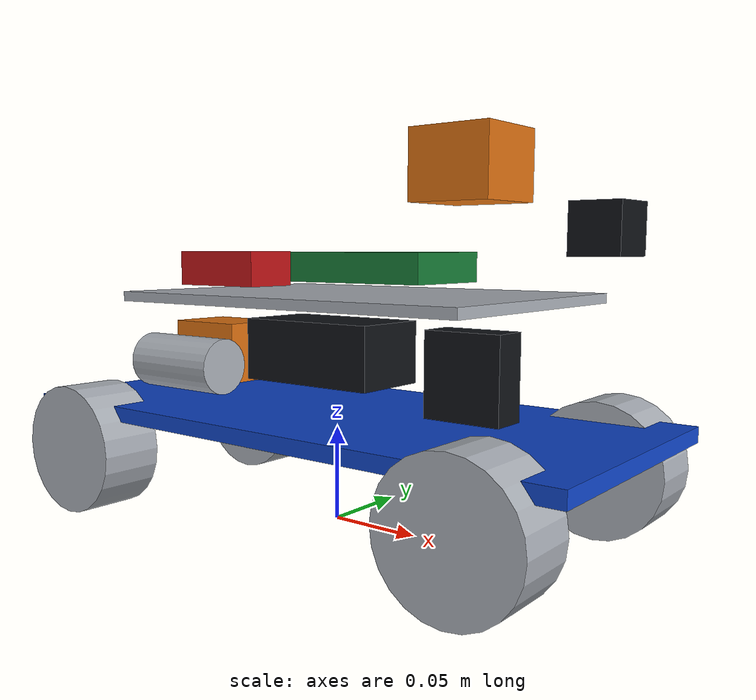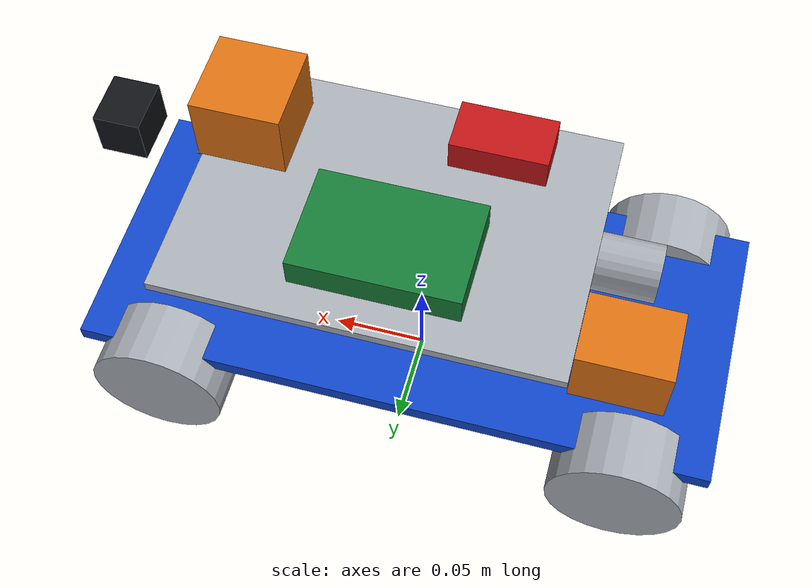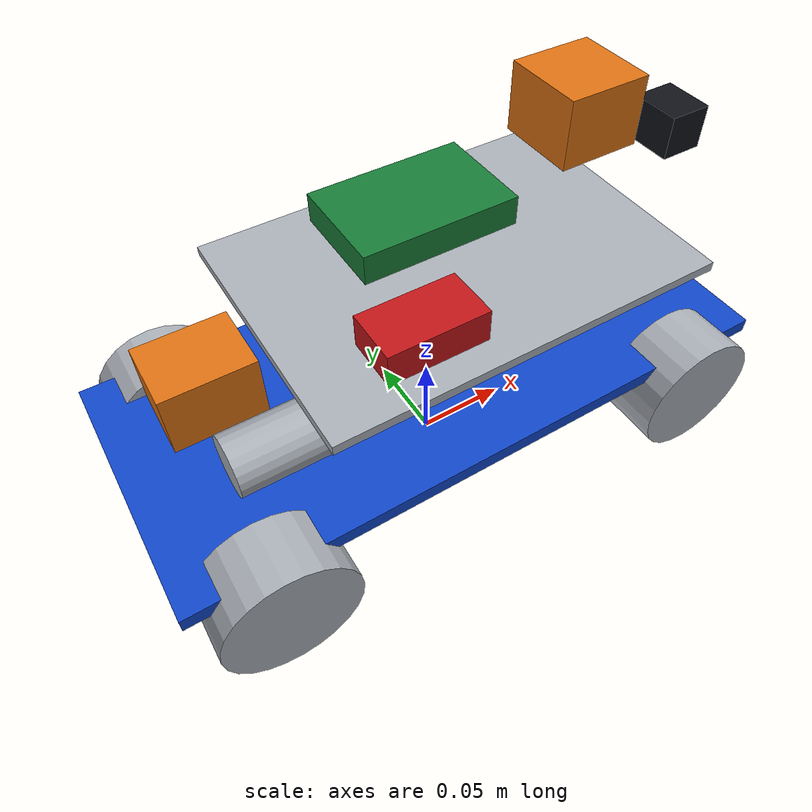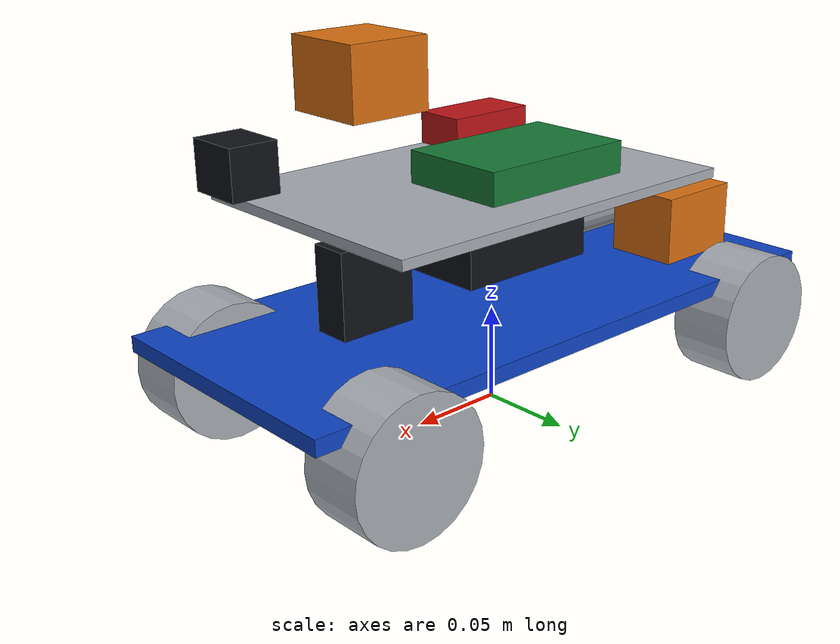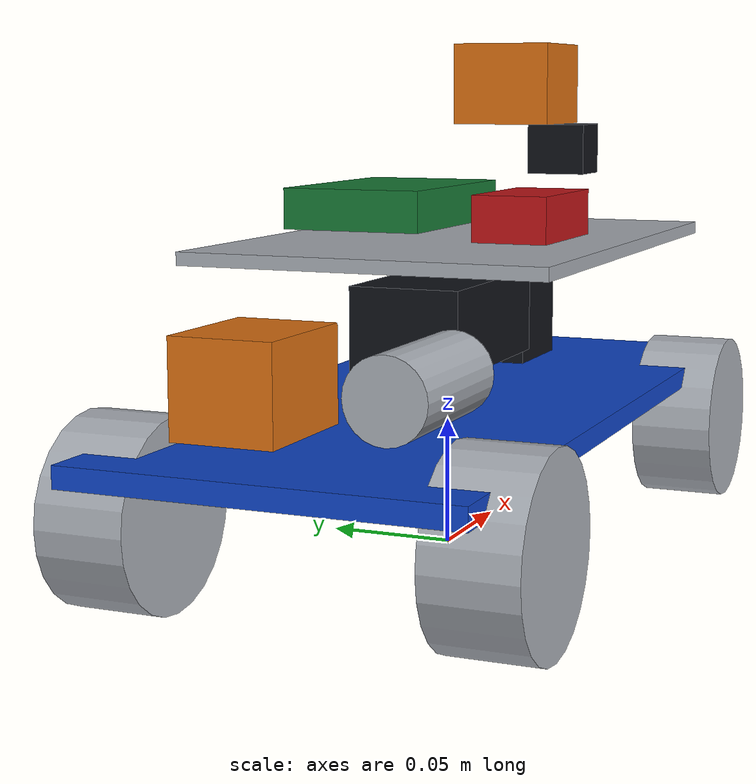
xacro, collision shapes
<?xml version='1.0' encoding='UTF-8'?>
<robot xmlns:xacro="http://www.ros.org/wiki/xacro" name="rcauto">
  <xacro:property name="length" value="0.350"/>
  <xacro:property name="width" value="0.200"/>
  <xacro:property name="wheelbase" value="0.244"/>
  <xacro:property name="kingpin_track" value="0.088"/><xacro:property name="track" value="0.138"/>
  <xacro:property name="wheel_radius" value="0.035"/>
  <xacro:macro name="mounted_mesh" params="name px py pz x y z mass mat filename z_offset"><link name="${name}"><xacro:box_inertia mass="${mass}" x="${x}" y="${y}" z="${z}"/><visual><origin xyz="0 0 ${z_offset}"/><geometry><mesh filename="${filename}" scale="0.001 0.001 0.001"/></geometry><material name="${mat}"/></visual><collision><geometry><box size="${x} ${y} ${z}"/></geometry></collision></link><joint name="${name}_mount" type="fixed"><parent link="base_link"/><child link="${name}"/><origin xyz="${px} ${py} ${pz}"/></joint></xacro:macro><xacro:property name="wheel_width" value="0.034"/>
  <xacro:property name="base_height" value="0.056"/>
  <xacro:property name="steering_limit" value="0.43"/>

  <material name="blue"><color rgba="0.06 0.27 0.78 1"/></material>
  <material name="black"><color rgba="0.06 0.07 0.09 1"/></material>
  <material name="rubber"><color rgba="0.04 0.04 0.05 1"/></material>
  <material name="green"><color rgba="0.09 0.48 0.21 1"/></material>
  <material name="metal"><color rgba="0.66 0.68 0.71 1"/></material>
  <material name="amber"><color rgba="0.86 0.44 0.07 1"/></material>
  <material name="red"><color rgba="0.75 0.08 0.09 1"/></material>

  <xacro:macro name="box_inertia" params="mass x y z">
    <inertial>
      <mass value="${mass}"/>
      <inertia ixx="${mass*(y*y+z*z)/12.0}" ixy="0" ixz="0" iyy="${mass*(x*x+z*z)/12.0}" iyz="0" izz="${mass*(x*x+y*y)/12.0}"/>
    </inertial>
  </xacro:macro>

  <xacro:macro name="box_visual" params="name x y z px py pz mat">
    <visual name="${name}">
      <origin xyz="${px} ${py} ${pz}"/>
      <geometry><box size="${x} ${y} ${z}"/></geometry>
      <material name="${mat}"/>
    </visual>
  </xacro:macro>

  <xacro:macro name="mounted_box" params="name px py pz x y z mass mat">
    <link name="${name}">
      <xacro:box_inertia mass="${mass}" x="${x}" y="${y}" z="${z}"/>
      <visual><geometry><box size="${x} ${y} ${z}"/></geometry><material name="${mat}"/></visual>
      <collision><geometry><box size="${x} ${y} ${z}"/></geometry></collision>
    </link>
    <joint name="${name}_mount" type="fixed">
      <parent link="base_link"/><child link="${name}"/>
      <origin xyz="${px} ${py} ${pz}"/>
    </joint>
  </xacro:macro>

  <xacro:macro name="wheel" params="name parent x y z">
    <link name="${name}_wheel">
      <inertial>
        <mass value="0.105"/>
        <inertia ixx="0.000046" ixy="0" ixz="0" iyy="0.0000643" iyz="0" izz="0.000046"/>
      </inertial>
      <collision>
        <origin rpy="${pi/2} 0 0"/>
        <geometry><cylinder radius="${wheel_radius}" length="${wheel_width}"/></geometry>
      </collision>
    <visual><origin xyz="0 0.015 0" rpy="${pi/2} 0 0"/><geometry><mesh filename="package://rcauto_cpp/sim/rcauto_350x200/meshes/20_wheel_rim_625ZZ.stl" scale="0.001 0.001 0.001"/></geometry><material name="metal"/></visual><visual><origin xyz="0 0.017 0" rpy="${pi/2} 0 0"/><geometry><mesh filename="package://rcauto_cpp/sim/rcauto_350x200/meshes/21_tire_70x34_TPU.stl" scale="0.001 0.001 0.001"/></geometry><material name="rubber"/></visual></link>
    <joint name="${name}_wheel_joint" type="continuous">
      <parent link="${parent}"/><child link="${name}_wheel"/>
      <origin xyz="${x} ${y} ${z}"/>
      <axis xyz="0 1 0"/>
      <limit effort="2.0" velocity="85"/>
      <dynamics damping="0.01" friction="0.015"/>
    </joint>
  </xacro:macro>

  <link name="base_footprint"/>
  <joint name="base_footprint_joint" type="fixed">
    <parent link="base_footprint"/><child link="base_link"/>
    <origin xyz="0 0 ${base_height}"/>
  </joint>
  <link name="base_link">
    <xacro:box_inertia mass="0.70" x="0.330" y="0.145" z="0.008"/>
    <!-- Four deck standoffs, sensor mast, camera bracket and rear drive housing. -->
    <collision><geometry><box size="0.330 0.145 0.008"/></geometry></collision>
  <visual name="print_01_chassis_front"><origin xyz="0.115 0 -0.004"/><geometry><mesh filename="package://rcauto_cpp/sim/rcauto_350x200/meshes/01_chassis_front.stl" scale="0.001 0.001 0.001"/></geometry><material name="blue"/></visual><visual name="print_02_chassis_center"><origin xyz="0 0 -0.004"/><geometry><mesh filename="package://rcauto_cpp/sim/rcauto_350x200/meshes/02_chassis_center.stl" scale="0.001 0.001 0.001"/></geometry><material name="blue"/></visual><visual name="print_03_chassis_rear"><origin xyz="-0.115 0 -0.004"/><geometry><mesh filename="package://rcauto_cpp/sim/rcauto_350x200/meshes/03_chassis_rear.stl" scale="0.001 0.001 0.001"/></geometry><material name="blue"/></visual><visual name="print_04_splice_front_left"><origin xyz="0.055 0.03 -0.008"/><geometry><mesh filename="package://rcauto_cpp/sim/rcauto_350x200/meshes/04_splice_front_left.stl" scale="0.001 0.001 0.001"/></geometry><material name="metal"/></visual><visual name="print_04_splice_front_right"><origin xyz="0.055 -0.03 -0.008"/><geometry><mesh filename="package://rcauto_cpp/sim/rcauto_350x200/meshes/04_splice_front_right.stl" scale="0.001 0.001 0.001"/></geometry><material name="metal"/></visual><visual name="print_04_splice_rear_left"><origin xyz="-0.055 0.03 -0.008"/><geometry><mesh filename="package://rcauto_cpp/sim/rcauto_350x200/meshes/04_splice_rear_left.stl" scale="0.001 0.001 0.001"/></geometry><material name="metal"/></visual><visual name="print_04_splice_rear_right"><origin xyz="-0.055 -0.03 -0.008"/><geometry><mesh filename="package://rcauto_cpp/sim/rcauto_350x200/meshes/04_splice_rear_right.stl" scale="0.001 0.001 0.001"/></geometry><material name="metal"/></visual><visual name="print_06_standoff_front_left"><origin xyz="0.065 0.038 0.004"/><geometry><mesh filename="package://rcauto_cpp/sim/rcauto_350x200/meshes/06_standoff_front_left.stl" scale="0.001 0.001 0.001"/></geometry><material name="metal"/></visual><visual name="print_06_standoff_front_right"><origin xyz="0.065 -0.038 0.004"/><geometry><mesh filename="package://rcauto_cpp/sim/rcauto_350x200/meshes/06_standoff_front_right.stl" scale="0.001 0.001 0.001"/></geometry><material name="metal"/></visual><visual name="print_06_standoff_rear_left"><origin xyz="-0.065 0.059 0.004"/><geometry><mesh filename="package://rcauto_cpp/sim/rcauto_350x200/meshes/06_standoff_rear_left.stl" scale="0.001 0.001 0.001"/></geometry><material name="metal"/></visual><visual name="print_06_standoff_rear_right"><origin xyz="-0.065 -0.059 0.004"/><geometry><mesh filename="package://rcauto_cpp/sim/rcauto_350x200/meshes/06_standoff_rear_right.stl" scale="0.001 0.001 0.001"/></geometry><material name="metal"/></visual><visual name="print_07_pi5_spacer_1"><origin xyz="-0.03 0.0025 0.0665"/><geometry><mesh filename="package://rcauto_cpp/sim/rcauto_350x200/meshes/07_pi5_spacer_1.stl" scale="0.001 0.001 0.001"/></geometry><material name="metal"/></visual><visual name="print_07_pi5_spacer_2"><origin xyz="-0.03 0.0515 0.0665"/><geometry><mesh filename="package://rcauto_cpp/sim/rcauto_350x200/meshes/07_pi5_spacer_2.stl" scale="0.001 0.001 0.001"/></geometry><material name="metal"/></visual><visual name="print_07_pi5_spacer_3"><origin xyz="0.028 0.0025 0.0665"/><geometry><mesh filename="package://rcauto_cpp/sim/rcauto_350x200/meshes/07_pi5_spacer_3.stl" scale="0.001 0.001 0.001"/></geometry><material name="metal"/></visual><visual name="print_07_pi5_spacer_4"><origin xyz="0.028 0.0515 0.0665"/><geometry><mesh filename="package://rcauto_cpp/sim/rcauto_350x200/meshes/07_pi5_spacer_4.stl" scale="0.001 0.001 0.001"/></geometry><material name="metal"/></visual><visual name="print_08_servo_MG996R_cradle"><origin xyz="0.082 0 0.004"/><geometry><mesh filename="package://rcauto_cpp/sim/rcauto_350x200/meshes/08_servo_MG996R_cradle.stl" scale="0.001 0.001 0.001"/></geometry><material name="metal"/></visual><visual name="print_09_servo_clamp_front"><origin xyz="0.1065 0 0.03675"/><geometry><mesh filename="package://rcauto_cpp/sim/rcauto_350x200/meshes/09_servo_clamp_front.stl" scale="0.001 0.001 0.001"/></geometry><material name="metal"/></visual><visual name="print_09_servo_clamp_rear"><origin xyz="0.0575 0 0.03675"/><geometry><mesh filename="package://rcauto_cpp/sim/rcauto_350x200/meshes/09_servo_clamp_rear.stl" scale="0.001 0.001 0.001"/></geometry><material name="metal"/></visual><visual name="print_10_bldc_adjustable_cradle"><origin xyz="-0.09 -0.026 0.004"/><geometry><mesh filename="package://rcauto_cpp/sim/rcauto_350x200/meshes/10_bldc_adjustable_cradle.stl" scale="0.001 0.001 0.001"/></geometry><material name="metal"/></visual><visual name="print_11_gearbox_universal_tray"><origin xyz="-0.112 0.026 0.004"/><geometry><mesh filename="package://rcauto_cpp/sim/rcauto_350x200/meshes/11_gearbox_universal_tray.stl" scale="0.001 0.001 0.001"/></geometry><material name="metal"/></visual><visual name="print_12_battery_lifted_tray"><origin xyz="-0.005 0 0.004"/><geometry><mesh filename="package://rcauto_cpp/sim/rcauto_350x200/meshes/12_battery_lifted_tray.stl" scale="0.001 0.001 0.001"/></geometry><material name="metal"/></visual><visual name="print_13_esc_strap_tray"><origin xyz="-0.03 -0.045 0.0665"/><geometry><mesh filename="package://rcauto_cpp/sim/rcauto_350x200/meshes/13_esc_strap_tray.stl" scale="0.001 0.001 0.001"/></geometry><material name="metal"/></visual><visual name="print_14_camera_front_mast"><origin xyz="0.145 0 0.004"/><geometry><mesh filename="package://rcauto_cpp/sim/rcauto_350x200/meshes/14_camera_front_mast.stl" scale="0.001 0.001 0.001"/></geometry><material name="metal"/></visual><visual name="print_15_lidar_pedestal"><origin xyz="0.08 0 0.0665"/><geometry><mesh filename="package://rcauto_cpp/sim/rcauto_350x200/meshes/15_lidar_pedestal.stl" scale="0.001 0.001 0.001"/></geometry><material name="metal"/></visual><visual name="print_16_kingpin_fork_left"><origin xyz="0.122 0.044 -0.036"/><geometry><mesh filename="package://rcauto_cpp/sim/rcauto_350x200/meshes/16_kingpin_fork_left.stl" scale="0.001 0.001 0.001"/></geometry><material name="metal"/></visual><visual name="print_16_kingpin_fork_right"><origin xyz="0.122 -0.044 -0.036"/><geometry><mesh filename="package://rcauto_cpp/sim/rcauto_350x200/meshes/16_kingpin_fork_right.stl" scale="0.001 0.001 0.001"/></geometry><material name="metal"/></visual><visual name="print_18_steering_tie_rod"><origin xyz="0.104 0 -0.01725"/><geometry><mesh filename="package://rcauto_cpp/sim/rcauto_350x200/meshes/18_steering_tie_rod.stl" scale="0.001 0.001 0.001"/></geometry><material name="metal"/></visual><visual name="print_22_rear_bearing_hanger_left"><origin xyz="-0.122 0.043 -0.033"/><geometry><mesh filename="package://rcauto_cpp/sim/rcauto_350x200/meshes/22_rear_bearing_hanger_left.stl" scale="0.001 0.001 0.001"/></geometry><material name="metal"/></visual><visual name="print_22_rear_bearing_hanger_right"><origin xyz="-0.122 -0.043 -0.033"/><geometry><mesh filename="package://rcauto_cpp/sim/rcauto_350x200/meshes/22_rear_bearing_hanger_right.stl" scale="0.001 0.001 0.001"/></geometry><material name="metal"/></visual></link>

  <!-- Steering kingpins are +/-0.069 m; maximum steered tyre outer edges stay below +/-0.100 m.
       Positive yaw steers left. Actual tie-rod linkage/servo horn must be calibrated. -->
  <xacro:macro name="front_knuckle" params="side y wheel_offset">
    <link name="front_${side}_knuckle">
      <xacro:box_inertia mass="0.035" x="0.018" y="0.018" z="0.026"/>
      <visual><origin xyz="0 0 -0.008"/><geometry><mesh filename="package://rcauto_cpp/sim/rcauto_350x200/meshes/17_front_knuckle_${side}.stl" scale="0.001 0.001 0.001"/></geometry><material name="metal"/></visual></link>
    <joint name="front_${side}_steering_joint" type="revolute">
      <parent link="base_link"/><child link="front_${side}_knuckle"/>
      <origin xyz="${wheelbase/2} ${y} ${wheel_radius-base_height}"/>
      <axis xyz="0 0 1"/>
      <limit lower="-0.43" upper="0.43" effort="5" velocity="3.8"/>
      <dynamics damping="0.03" friction="0.01"/>
    </joint>
    <xacro:wheel name="front_${side}" parent="front_${side}_knuckle" x="0" y="${wheel_offset}" z="0"/>
  </xacro:macro>
  <xacro:front_knuckle side="left" y="${kingpin_track/2}" wheel_offset="0.025"/>
  <xacro:front_knuckle side="right" y="${-kingpin_track/2}" wheel_offset="-0.025"/>
  <xacro:wheel name="rear_left" parent="base_link" x="${-wheelbase/2}" y="${track/2}" z="${wheel_radius-base_height}"/>
  <xacro:wheel name="rear_right" parent="base_link" x="${-wheelbase/2}" y="${-track/2}" z="${wheel_radius-base_height}"/>

  <!-- TowerPro MG996R-sized envelope: 40.7 x 19.7 x 42.9 mm, 55 g. -->
  <xacro:mounted_box name="towerpro_steering_servo" px="0.082" py="0" pz="0.029" x="0.0407" y="0.0197" z="0.0429" mass="0.055" mat="black"/>
  <!-- Central geared drive; rear differential assumed to permit unequal wheel speeds. -->
  <xacro:mounted_box name="gearbox_differential" px="-0.112" py="0.026" pz="0.026" x="0.049" y="0.039" z="0.036" mass="0.16" mat="amber"/>
  <xacro:mounted_box name="battery_pack" px="-0.005" py="0" pz="0.035" x="0.080" y="0.044" z="0.033" mass="0.30" mat="black"/>
  <xacro:mounted_mesh name="upper_deck" px="0.015" py="0" pz="0.064" x="0.205" y="0.142" z="0.005" mass="0.16" mat="metal" filename="package://rcauto_cpp/sim/rcauto_350x200/meshes/05_upper_deck_pi5_esc.stl" z_offset="-0.0025"/>
  <!-- RPi 5 PCB footprint 85 x 56 mm; height is conservative assembly envelope. -->
  <xacro:mounted_box name="raspberry_pi_5" px="0.009" py="0.027" pz="0.079" x="0.085" y="0.056" z="0.016" mass="0.065" mat="green"/>
  <xacro:mounted_box name="esc" px="-0.030" py="-0.045" pz="0.079" x="0.050" y="0.028" z="0.017" mass="0.065" mat="red"/>
  <xacro:mounted_box name="front_camera" px="0.146" py="0" pz="0.097" x="0.023" y="0.027" z="0.023" mass="0.025" mat="black"/>
  <xacro:mounted_box name="front_lidar" px="0.080" py="0" pz="0.127" x="0.042" y="0.042" z="0.034" mass="0.04" mat="amber"/>
  <!-- Lidar optical scan origin is 21 mm above the sensor body centre. -->
  <link name="lidar_scan_frame"/>
  <joint name="lidar_scan_joint" type="fixed">
    <parent link="front_lidar"/><child link="lidar_scan_frame"/>
    <origin xyz="0 0 0.021"/>
  </joint>
  <!-- Sensor frames: Gazebo camera optical direction is +X in camera body. -->
  <link name="camera_optical_frame"/>
  <joint name="camera_optical_joint" type="fixed">
    <parent link="front_camera"/><child link="camera_optical_frame"/>
    <origin rpy="-1.57079632679 0 -1.57079632679"/>
  </joint>
  <link name="imu_link"/>
  <joint name="imu_joint" type="fixed"><parent link="base_link"/><child link="imu_link"/><origin xyz="0 0 0.075"/></joint>
<link name="bldc_motor"><inertial><mass value="0.18"/><inertia ixx="0.0000216225" ixy="0" ixz="0" iyy="0.00006661125" iyz="0" izz="0.00006661125"/></inertial><visual><origin rpy="0 1.57079632679 0"/><geometry><cylinder radius="0.0155" length="0.061"/></geometry><material name="metal"/></visual><collision><origin rpy="0 1.57079632679 0"/><geometry><cylinder radius="0.0155" length="0.061"/></geometry></collision></link><joint name="bldc_motor_mount" type="fixed"><parent link="base_link"/><child link="bldc_motor"/><origin xyz="-0.090 -0.026 0.024"/></joint></robot>
